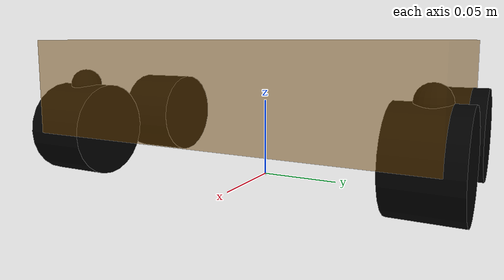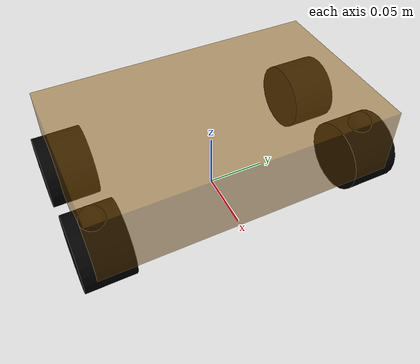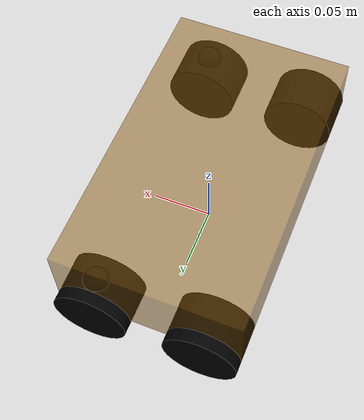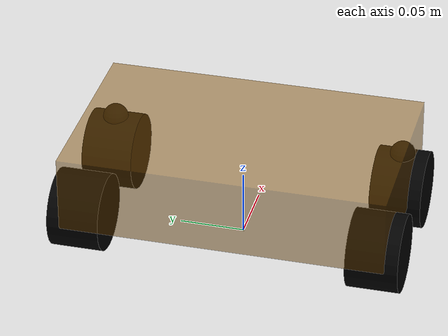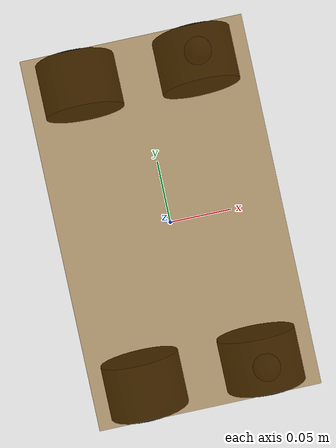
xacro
<?xml version="1.0"?>
<!-- 按照先后顺序组合my_car -->
<robot name="my_car" xmlns:xacro="http://wiki.ros.org/xacro">
    <!--惯性矩阵-->
    <xacro:include filename="inertial_matrix.xacro" />
    <!--本体-->
    <xacro:include filename="my_car_base_1.xacro" />
    <xacro:include filename="my_car_gazebo_plugins.xacro" />
    <!--控制器-->
    <xacro:include filename="my_car_twist.xacro" />
    <xacro:include filename="my_car_ros_control.xacro" />
</robot>

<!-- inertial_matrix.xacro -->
<robot name="my_car" xmlns:xacro="http://wiki.ros.org/xacro">
    <!-- Macro for inertia matrix -->
    <xacro:macro name="sphere_inertial_matrix" params="m r">
        <inertial>
            <mass value="${m}" />
            <inertia ixx="${2*m*r*r/5}" ixy="0" ixz="0"
                iyy="${2*m*r*r/5}" iyz="0"
                izz="${2*m*r*r/5}" />
        </inertial>
    </xacro:macro>

    <xacro:macro name="cylinder_inertial_matrix" params="m r h">
        <inertial>
            <mass value="${m}" />
            <inertia ixx="${m*(3*r*r+h*h)/12}" ixy = "0" ixz = "0"
                iyy="${m*(3*r*r+h*h)/12}" iyz = "0"
                izz="${m*r*r/2}" />
        </inertial>
    </xacro:macro>

    <xacro:macro name="box_inertial_matrix" params="m l w h">
       <inertial>
               <mass value="${m}" />
               <inertia ixx="${m*(h*h + l*l)/12}" ixy = "0" ixz = "0"
                   iyy="${m*(w*w + l*l)/12}" iyz= "0"
                   izz="${m*(w*w + h*h)/12}" />
       </inertial>
   </xacro:macro>
</robot>

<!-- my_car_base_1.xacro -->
<!-- 根标签，必须声明 xmlns:xacro -->
<robot name="my_car" xmlns:xacro="http://www.ros.org/wiki/xacro">
    <!-- 封装变量、常量 -->
    <!-- PI 值设置精度需要高一些，否则后续车轮翻转量计算时，可能会出现肉眼不能察觉的车轮倾斜，从而导致模型抖动 -->
    <xacro:property name="PI" value="3.1415926"/>
    <!-- 宏:黑色设置 -->
    <material name="black">
        <color rgba="0.0 0.0 0.0 1.0" />
    </material>
    <!-- 底盘属性 -->
    <xacro:property name="base_footprint_radius" value="0.001" /> <!-- base_footprint 半径  -->
    <xacro:property name="base_link_x" value="0.15" /> <!-- base_link x -->
    <xacro:property name="base_link_y" value="0.25" /> <!-- base_link y -->
    <xacro:property name="base_link_z" value="0.06" /> <!-- base_link z -->
    <xacro:property name="base_link_m" value="5" /> <!-- 质量  -->
    <xacro:property name="earth_space" value="0.03" /> <!--离地距离-->
    <!-- 驱动轮属性 -->
    <xacro:property name="wheel_joint_r" value="0.01" /> <!--驱动轮转向关节-->
    <xacro:property name="wheel_joint_m" value="0.3" /> <!--驱动轮转向关节-->
    <xacro:property name="wheel_dis_x" value="0.09" /> <!--驱动轮沿baselink_x方向距离-->
    <xacro:property name="wheel_dis_y" value="0.23" /> <!--驱动轮沿baselink_y方向距离-->
    <xacro:property name="wheel_radius" value="0.03" /><!-- 半径 -->
    <xacro:property name="wheel_length" value="0.04" /><!-- 宽度 -->
    <xacro:property name="wheel_m" value="0.5" /> <!-- 质量  -->

    <!-- footprint -->
    <link name="base_footprint">
      <visual>
        <geometry>
          <sphere radius="${base_footprint_radius}" />
        </geometry>
      </visual>
    </link>

    <!-- 底盘 -->
    <link name="base_link">
      <visual>
        <geometry>
          <box size="${base_link_x} ${base_link_y} ${base_link_z}" />
        </geometry>
        <origin xyz="0 0 0" rpy="0 0 0" />
        <material name="yellow">
          <color rgba="0.5 0.3 0.0 0.5" />
        </material>
      </visual>
      <collision>
        <geometry>
          <box size="${base_link_x} ${base_link_y} ${base_link_z}" />
        </geometry>
        <origin xyz="0 0 0" rpy="0 0 0" />
      </collision>
      <xacro:box_inertial_matrix m="${base_link_m}" l="${base_link_x}" w="${base_link_y}" h="${base_link_z}" />
    </link>

    <joint name="base_link2base_footprint" type="fixed">
      <parent link="base_footprint" />
      <child link="base_link" />
      <origin xyz="0 0 ${earth_space + base_link_z / 2 }" />
    </joint>

    <!-- 后驱动轮 -->
    <xacro:macro name="add_moving_wheels" params="wheel_name x_flag y_flag">
      <link name="${wheel_name}_wheel">
        <visual>
          <geometry>
            <cylinder radius="${wheel_radius}" length="${wheel_length}" />
          </geometry>
          <origin xyz="0.0 0.0 0.0" rpy="${PI / 2} 0.0 0.0" />
          <material name="black" />
        </visual>
        <collision>
          <geometry>
            <cylinder radius="${wheel_radius}" length="${wheel_length}" />
          </geometry>
          <origin xyz="0.0 0.0 0.0" rpy="${PI / 2} 0.0 0.0" />
        </collision>
        <xacro:cylinder_inertial_matrix m="${wheel_m}" r="${wheel_radius}" h="${wheel_length}" />
      </link>

      <joint name="${wheel_name}_wheel2base_link" type="continuous">
        <parent link="base_link" />
        <child link="${wheel_name}_wheel" />
        <origin xyz="${x_flag * wheel_dis_x *0.5} ${y_flag * wheel_dis_y *0.5} -0.030" />
        <axis xyz="0 1 0" />
        <dynamics damping="0.0"/>
		    <limit effort="100" velocity="1000"/>
		    <joint_properties damping="0.0" friction="0.0"/>
      </joint>

    </xacro:macro>

    <xacro:add_moving_wheels wheel_name="back_left" x_flag="-1" y_flag="1" />
    <xacro:add_moving_wheels wheel_name="back_right" x_flag="-1" y_flag="-1" />

    <!--前转向轮-->
    <xacro:macro name="add_wheel_joints" params="joint_name x_flag y_flag">
      <!-- 转向关节 -->
      <link name="${joint_name}_wheel_joint">
        <visual>
          <geometry>
            <sphere radius="${wheel_joint_r}" />
          </geometry>
          <origin xyz="0.0 0.0 0.0" rpy="0.0 0.0 0.0" />
          <material name="black" />
        </visual>
        <collision>
          <geometry>
            <sphere radius="${wheel_joint_r}" />
          </geometry>
          <origin xyz="0.0 0.0 0.0" rpy="0.0 0.0 0.0" />
        </collision>
        <xacro:sphere_inertial_matrix m="${wheel_joint_m}" r="${wheel_joint_r}" />
      </link>

      <joint name="${joint_name}_wheel_joint2base_link" type="revolute">
        <parent link="base_link" />
        <child link="${joint_name}_wheel_joint" />
        <origin xyz="${x_flag * wheel_dis_x *0.5} ${y_flag * wheel_dis_y *0.5} 0.0" />
        <axis xyz="0 0 1" />
        <!--effort最大力/力矩 v速度-->
        <limit effort="10" velocity="1000" lower="-0.6" upper="0.6" />
        <!--阻尼系数0-->
        <dynamics damping="0.1"/>
        <!--damping阻尼系数 friction摩擦系数-->
        <joint_properties damping="0.1" friction="1.0"/>
      </joint>

      <!--转向轮-->
      <link name="${joint_name}_wheel">
        <visual>
          <geometry>
            <cylinder radius="${wheel_radius}" length="${wheel_length}" />
          </geometry>
          <origin xyz="0.0 0.0 0.0" rpy="${PI / 2} 0.0 0.0" />
          <material name="black" />
        </visual>
        <collision>
          <geometry>
            <cylinder radius="${wheel_radius}" length="${wheel_length}" />
          </geometry>
          <origin xyz="0.0 0.0 0.0" rpy="${PI / 2} 0.0 0.0" />
        </collision>
        <xacro:cylinder_inertial_matrix m="${wheel_m}" r="${wheel_radius}" h="${wheel_length}" />
      </link>

      <joint name="${joint_name}_wheel2${joint_name}_wheel_joint" type="continuous">
        <parent link="${joint_name}_wheel_joint" />
        <child link="${joint_name}_wheel" />
        <origin xyz="0 0 -0.030" />
        <axis xyz="0 1 0" />
        <dynamics damping="0.0"/>
        <limit effort="100" velocity="1000"/>
    	<joint_properties damping="0.0" friction="0.0"/>-->
      </joint>
    </xacro:macro>

    <xacro:add_wheel_joints joint_name="front_left" x_flag="1" y_flag="1" />
    <xacro:add_wheel_joints joint_name="front_right" x_flag="1" y_flag="-1" />
</robot>
